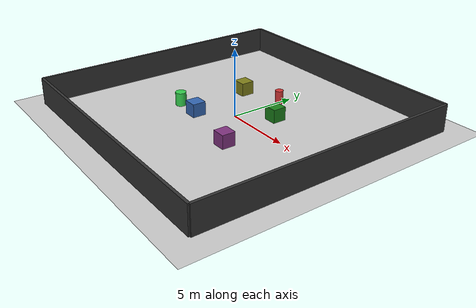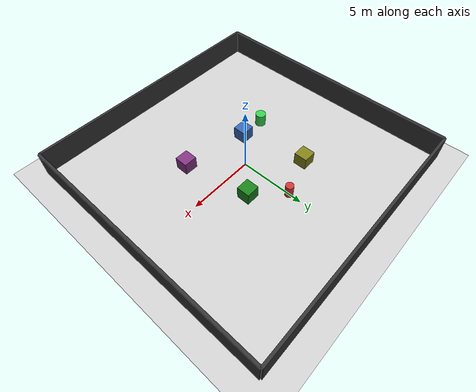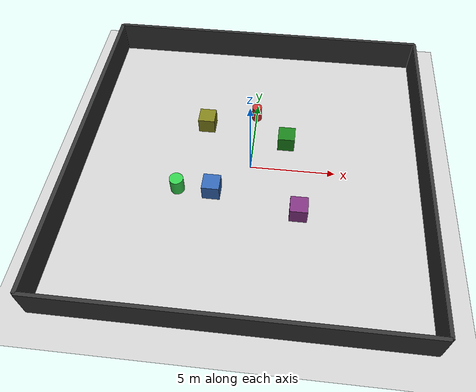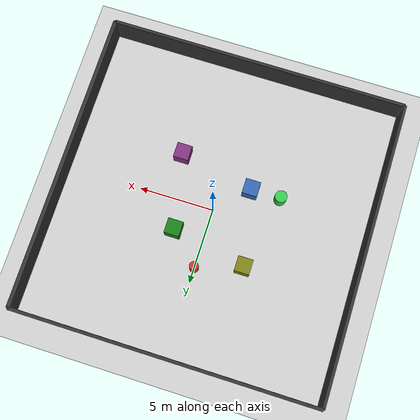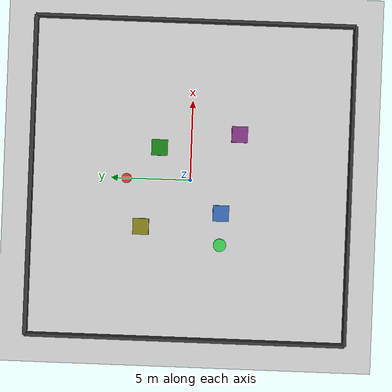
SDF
<?xml version="1.0"?>
<sdf version="1.7">
  <world name="room_with_obstacles">

    <!-- Directional Light -->
    <light type="directional" name="sun">
      <cast_shadows>true</cast_shadows>
      <pose>0 0 10 0 0 0</pose>
      <diffuse>0.8 0.8 0.8 1</diffuse>
      <specular>0.2 0.2 0.2 1</specular>
      <attenuation>
        <range>1000</range>
        <constant>0.9</constant>
        <linear>0.01</linear>
        <quadratic>0.001</quadratic>
      </attenuation>
      <direction>-0.5 0.1 -0.9</direction>
    </light>

    <!-- Ground Plane -->
    <model name="ground_plane">
      <static>true</static>
      <link name="link">
        <collision name="collision">
          <geometry>
            <plane>
              <normal>0 0 1</normal>
            </plane>
          </geometry>
        </collision>
        <visual name="visual">
          <geometry>
            <plane>
              <normal>0 0 1</normal>
              <size>20 20</size>
            </plane>
          </geometry>
          <material>
            <ambient>0.8 0.8 0.8 1</ambient>
            <diffuse>0.8 0.8 0.8 1</diffuse>
            <specular>0.8 0.8 0.8 1</specular>
          </material>
        </visual>
      </link>
    </model>

    <!-- Walls -->
    <model name="wall_north">
      <static>true</static>
      <pose>0 10 1 0 0 0</pose>
      <link name="link">
        <collision name="collision">
          <geometry>
            <box><size>20 0.2 2</size></box>
          </geometry>
        </collision>
        <visual name="visual">
          <geometry>
            <box><size>20 0.2 2</size></box>
          </geometry>
          <material><ambient>0.2 0.2 0.2 1</ambient></material>
        </visual>
      </link>
    </model>

    <model name="wall_south">
      <static>true</static>
      <pose>0 -10 1 0 0 0</pose>
      <link name="link">
        <collision name="collision">
          <geometry>
            <box><size>20 0.2 2</size></box>
          </geometry>
        </collision>
        <visual name="visual">
          <geometry>
            <box><size>20 0.2 2</size></box>
          </geometry>
          <material><ambient>0.2 0.2 0.2 1</ambient></material>
        </visual>
      </link>
    </model>

    <model name="wall_east">
      <static>true</static>
      <pose>10 0 1 0 0 0</pose>
      <link name="link">
        <collision name="collision">
          <geometry>
            <box><size>0.2 20 2</size></box>
          </geometry>
        </collision>
        <visual name="visual">
          <geometry>
            <box><size>0.2 20 2</size></box>
          </geometry>
          <material><ambient>0.2 0.2 0.2 1</ambient></material>
        </visual>
      </link>
    </model>

    <model name="wall_west">
      <static>true</static>
      <pose>-10 0 1 0 0 0</pose>
      <link name="link">
        <collision name="collision">
          <geometry>
            <box><size>0.2 20 2</size></box>
          </geometry>
        </collision>
        <visual name="visual">
          <geometry>
            <box><size>0.2 20 2</size></box>
          </geometry>
          <material><ambient>0.2 0.2 0.2 1</ambient></material>
        </visual>
      </link>
    </model>

    <model name="box1">
      <static>true</static>
      <pose>2 2 0.5 0 0 0</pose>
      <link name="link">
        <collision name="collision">
          <geometry><box><size>1 1 1</size></box></geometry>
        </collision>
        <visual name="visual">
          <geometry><box><size>1 1 1</size></box></geometry>
          <material><ambient>0.1 0.5 0.1 1</ambient></material>
        </visual>
      </link>
    </model>

    <model name="box2">
      <static>true</static>
      <pose>-3 3 0.5 0 0 0</pose>
      <link name="link">
        <collision name="collision">
          <geometry><box><size>1 1 1</size></box></geometry>
        </collision>
        <visual name="visual">
          <geometry><box><size>1 1 1</size></box></geometry>
          <material><ambient>0.5 0.5 0.1 1</ambient></material>
        </visual>
      </link>
    </model>

    <model name="box3">
      <static>true</static>
      <pose>3 -3 0.5 0 0 0</pose>
      <link name="link">
        <collision name="collision">
          <geometry><box><size>1 1 1</size></box></geometry>
        </collision>
        <visual name="visual">
          <geometry><box><size>1 1 1</size></box></geometry>
          <material><ambient>0.5 0.2 0.5 1</ambient></material>
        </visual>
      </link>
    </model>

    <model name="box4">
      <static>true</static>
      <pose>-2 -2 0.5 0 0 0</pose>
      <link name="link">
        <collision name="collision">
          <geometry><box><size>1 1 1</size></box></geometry>
        </collision>
        <visual name="visual">
          <geometry><box><size>1 1 1</size></box></geometry>
          <material><ambient>0.2 0.4 0.7 1</ambient></material>
        </visual>
      </link>
    </model>

    <model name="cylinder1">
      <static>true</static>
      <pose>0 4 0.5 0 0 0</pose>
      <link name="link">
        <collision name="collision">
          <geometry><cylinder><radius>0.3</radius><length>1</length></cylinder></geometry>
        </collision>
        <visual name="visual">
          <geometry><cylinder><radius>0.3</radius><length>1</length></cylinder></geometry>
          <material><ambient>0.8 0.2 0.2 1</ambient></material>
        </visual>
      </link>
    </model>

    <model name="cylinder2">
      <static>true</static>
      <pose>-4 -2 0.5 0 0 0</pose>
      <link name="link">
        <collision name="collision">
          <geometry><cylinder><radius>0.4</radius><length>1</length></cylinder></geometry>
        </collision>
        <visual name="visual">
          <geometry><cylinder><radius>0.4</radius><length>1</length></cylinder></geometry>
          <material><ambient>0.2 0.8 0.3 1</ambient></material>
        </visual>
      </link>
    </model>

  </world>
</sdf>
